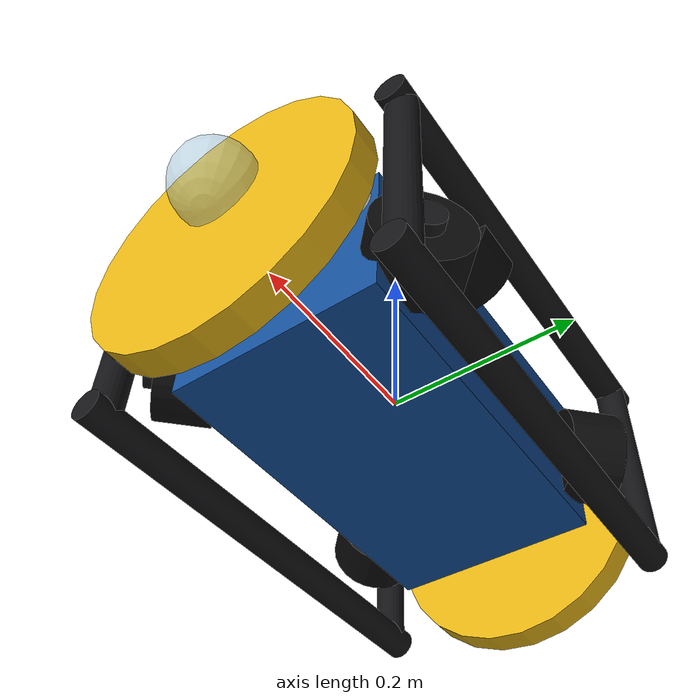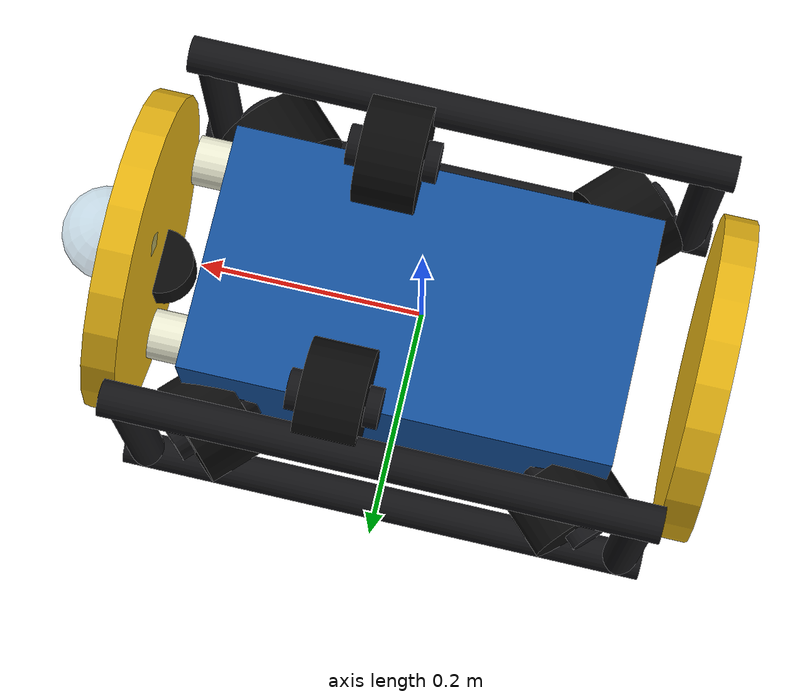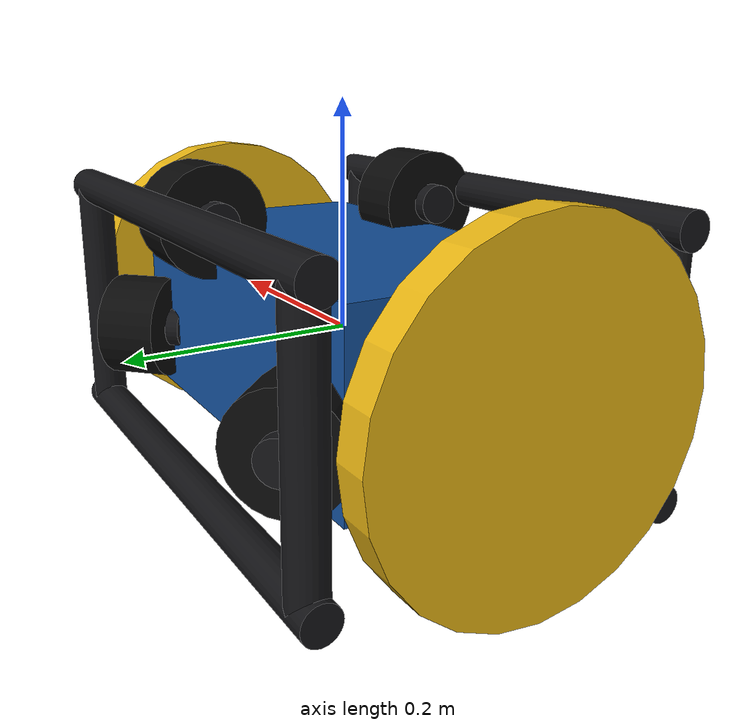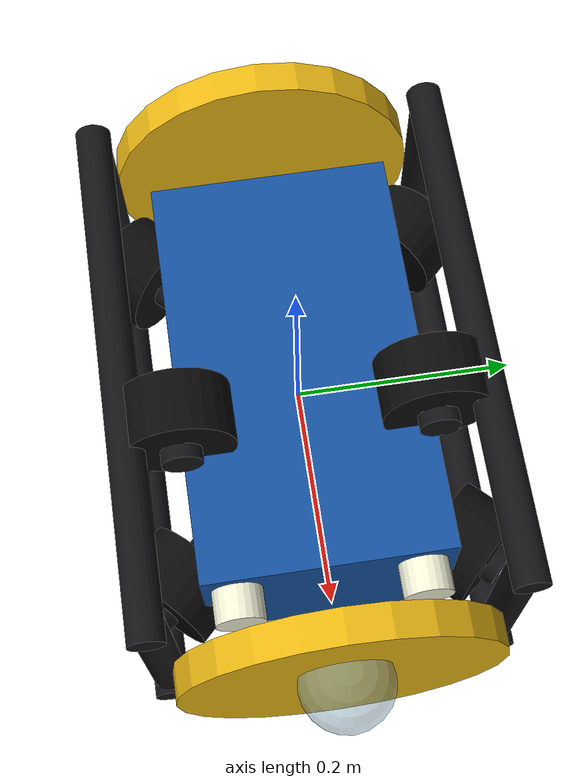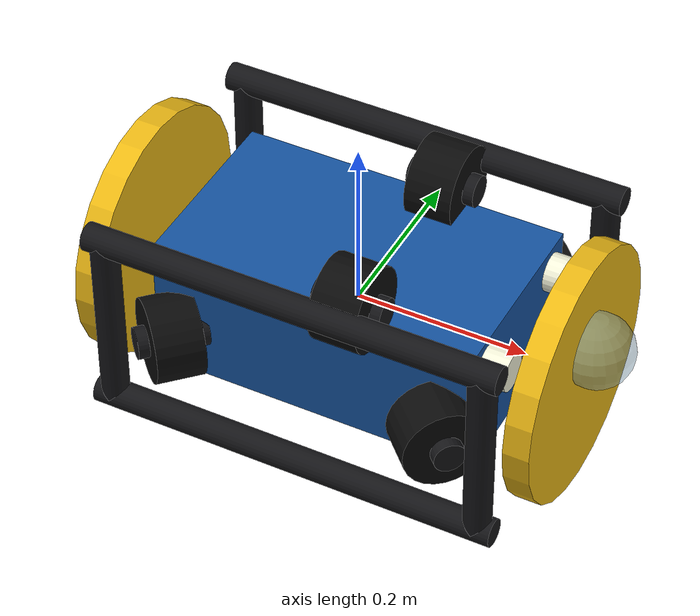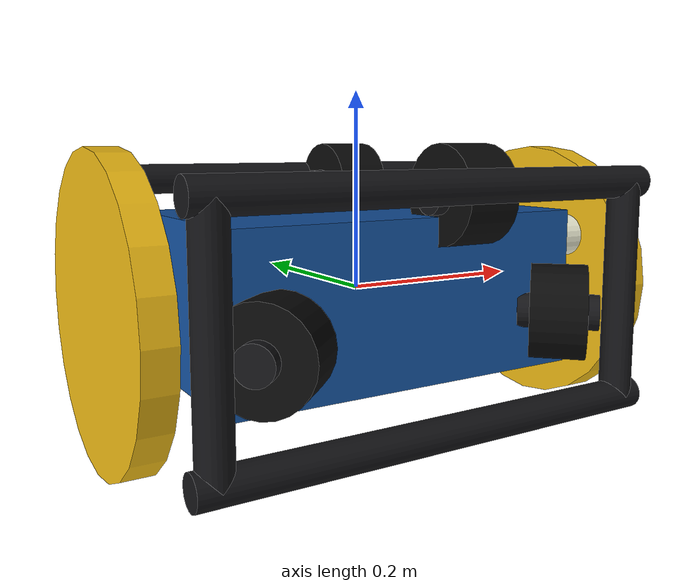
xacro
<?xml version="1.0"?>
<robot xmlns:xacro="http://www.ros.org/wiki/xacro" name="abdu_rov">
  <!--
    ABDÜ — muayene sınıfı ROV (BlueROV2 benzeri açık çerçeve).
    6 serbestlik derecesi: surge, sway, heave, roll, pitch, yaw.
  -->

  <xacro:property name="body_x" value="0.38"/>
  <xacro:property name="body_y" value="0.22"/>
  <xacro:property name="body_z" value="0.16"/>
  <xacro:property name="body_mass" value="13.0"/>

  <xacro:macro name="box_inertia" params="m x y z">
    <inertia
      ixx="${m*(y*y+z*z)/12.0}" ixy="0.0" ixz="0.0"
      iyy="${m*(x*x+z*z)/12.0}" iyz="0.0"
      izz="${m*(x*x+y*y)/12.0}"/>
  </xacro:macro>

  <xacro:macro name="cyl_inertia" params="m r h">
    <inertia
      ixx="${m*(3*r*r+h*h)/12.0}" ixy="0.0" ixz="0.0"
      iyy="${m*(3*r*r+h*h)/12.0}" iyz="0.0"
      izz="${0.5*m*r*r}"/>
  </xacro:macro>

  <material name="blue">
    <color rgba="0.08 0.32 0.62 1.0"/>
  </material>
  <material name="frame_black">
    <color rgba="0.08 0.08 0.09 1.0"/>
  </material>
  <material name="yellow">
    <color rgba="0.92 0.72 0.08 1.0"/>
  </material>
  <material name="black">
    <color rgba="0.04 0.04 0.04 1.0"/>
  </material>
  <material name="white">
    <color rgba="0.90 0.92 0.94 1.0"/>
  </material>
  <material name="dome">
    <color rgba="0.55 0.72 0.82 0.45"/>
  </material>
  <material name="led">
    <color rgba="0.95 0.95 0.85 1.0"/>
  </material>

  <!-- Referans gövde -->
  <link name="base_link">
    <inertial>
      <origin xyz="0 0 0"/>
      <mass value="${body_mass}"/>
      <xacro:box_inertia m="${body_mass}" x="${body_x}" y="${body_y}" z="${body_z}"/>
    </inertial>
    <visual>
      <geometry>
        <box size="${body_x} ${body_y} ${body_z}"/>
      </geometry>
      <material name="blue"/>
    </visual>
    <collision>
      <geometry>
        <box size="0.48 0.36 0.26"/>
      </geometry>
    </collision>
  </link>

  <!-- Açık alüminyum çerçeve rayları -->
  <xacro:macro name="rail" params="name x y z l rpy">
    <link name="${name}">
      <visual>
        <origin rpy="${rpy}"/>
        <geometry>
          <cylinder radius="0.016" length="${l}"/>
        </geometry>
        <material name="frame_black"/>
      </visual>
      <inertial>
        <mass value="0.12"/>
        <inertia ixx="0.001" ixy="0" ixz="0" iyy="0.001" iyz="0" izz="0.001"/>
      </inertial>
    </link>
    <joint name="${name}_joint" type="fixed">
      <parent link="base_link"/>
      <child link="${name}"/>
      <origin xyz="${x} ${y} ${z}"/>
    </joint>
  </xacro:macro>

  <xacro:rail name="rail_top_l" x="0" y="0.155" z="0.11" l="0.48" rpy="0 ${pi/2} 0"/>
  <xacro:rail name="rail_top_r" x="0" y="-0.155" z="0.11" l="0.48" rpy="0 ${pi/2} 0"/>
  <xacro:rail name="rail_bot_l" x="0" y="0.155" z="-0.11" l="0.48" rpy="0 ${pi/2} 0"/>
  <xacro:rail name="rail_bot_r" x="0" y="-0.155" z="-0.11" l="0.48" rpy="0 ${pi/2} 0"/>
  <xacro:rail name="rail_front_v_l" x="0.22" y="0.155" z="0" l="0.22" rpy="0 0 0"/>
  <xacro:rail name="rail_front_v_r" x="0.22" y="-0.155" z="0" l="0.22" rpy="0 0 0"/>
  <xacro:rail name="rail_rear_v_l" x="-0.22" y="0.155" z="0" l="0.22" rpy="0 0 0"/>
  <xacro:rail name="rail_rear_v_r" x="-0.22" y="-0.155" z="0" l="0.22" rpy="0 0 0"/>

  <!-- Sarı koruma halkaları -->
  <link name="bumper_front">
    <visual>
      <origin rpy="0 ${pi/2} 0"/>
      <geometry>
        <cylinder radius="0.145" length="0.03"/>
      </geometry>
      <material name="yellow"/>
    </visual>
    <inertial>
      <mass value="0.2"/>
      <inertia ixx="0.002" ixy="0" ixz="0" iyy="0.002" iyz="0" izz="0.002"/>
    </inertial>
  </link>
  <joint name="bumper_front_joint" type="fixed">
    <parent link="base_link"/>
    <child link="bumper_front"/>
    <origin xyz="0.255 0 0"/>
  </joint>
  <link name="bumper_rear">
    <visual>
      <origin rpy="0 ${pi/2} 0"/>
      <geometry>
        <cylinder radius="0.145" length="0.03"/>
      </geometry>
      <material name="yellow"/>
    </visual>
    <inertial>
      <mass value="0.2"/>
      <inertia ixx="0.002" ixy="0" ixz="0" iyy="0.002" iyz="0" izz="0.002"/>
    </inertial>
  </link>
  <joint name="bumper_rear_joint" type="fixed">
    <parent link="base_link"/>
    <child link="bumper_rear"/>
    <origin xyz="-0.255 0 0"/>
  </joint>

  <!-- 4 vektörlü yatay + 2 dikey itici (BlueROV2 düzeni) -->
  <xacro:macro name="thruster" params="name xyz rpy">
    <link name="${name}">
      <visual>
        <origin rpy="0 ${pi/2} 0"/>
        <geometry>
          <cylinder radius="0.048" length="0.055"/>
        </geometry>
        <material name="black"/>
      </visual>
      <visual name="hub">
        <origin rpy="0 ${pi/2} 0"/>
        <geometry>
          <cylinder radius="0.018" length="0.08"/>
        </geometry>
        <material name="frame_black"/>
      </visual>
      <inertial>
        <mass value="0.28"/>
        <inertia ixx="0.0004" ixy="0" ixz="0" iyy="0.0004" iyz="0" izz="0.0004"/>
      </inertial>
    </link>
    <joint name="${name}_joint" type="fixed">
      <parent link="base_link"/>
      <child link="${name}"/>
      <origin xyz="${xyz}" rpy="${rpy}"/>
    </joint>
  </xacro:macro>

  <xacro:thruster name="thruster_fl" xyz="0.16 0.13 -0.02" rpy="0 0 ${pi/4}"/>
  <xacro:thruster name="thruster_fr" xyz="0.16 -0.13 -0.02" rpy="0 0 ${-pi/4}"/>
  <xacro:thruster name="thruster_rl" xyz="-0.16 0.13 -0.02" rpy="0 0 ${-pi/4}"/>
  <xacro:thruster name="thruster_rr" xyz="-0.16 -0.13 -0.02" rpy="0 0 ${pi/4}"/>
  <xacro:thruster name="thruster_vu" xyz="0.05 0.11 0.10" rpy="${pi/2} 0 0"/>
  <xacro:thruster name="thruster_vd" xyz="0.05 -0.11 0.10" rpy="${pi/2} 0 0"/>

  <!-- Tek ön kamera: burun kubbesi, tamponun biraz önünde, hafif aşağı bakış -->
  <link name="front_camera_link">
    <visual>
      <geometry>
        <sphere radius="0.042"/>
      </geometry>
      <material name="dome"/>
    </visual>
    <inertial>
      <mass value="0.12"/>
      <inertia ixx="0.0002" ixy="0" ixz="0" iyy="0.0002" iyz="0" izz="0.0002"/>
    </inertial>
  </link>
  <joint name="front_camera_joint" type="fixed">
    <parent link="base_link"/>
    <child link="front_camera_link"/>
    <origin xyz="0.28 0 0.04" rpy="0 -0.07 0"/>
  </joint>
  <link name="front_camera_optical_frame"/>
  <joint name="front_camera_optical_joint" type="fixed">
    <parent link="front_camera_link"/>
    <child link="front_camera_optical_frame"/>
    <origin xyz="0 0 0" rpy="${-pi/2} 0 ${-pi/2}"/>
  </joint>

  <!-- LED ışıklar -->
  <link name="light_left_link">
    <visual>
      <geometry>
        <cylinder radius="0.022" length="0.04"/>
      </geometry>
      <material name="led"/>
    </visual>
    <inertial>
      <mass value="0.04"/>
      <inertia ixx="1e-5" ixy="0" ixz="0" iyy="1e-5" iyz="0" izz="1e-5"/>
    </inertial>
  </link>
  <joint name="light_left_joint" type="fixed">
    <parent link="base_link"/>
    <child link="light_left_link"/>
    <origin xyz="0.20 0.08 0.05" rpy="0 ${pi/2} 0"/>
  </joint>
  <link name="light_right_link">
    <visual>
      <geometry>
        <cylinder radius="0.022" length="0.04"/>
      </geometry>
      <material name="led"/>
    </visual>
    <inertial>
      <mass value="0.04"/>
      <inertia ixx="1e-5" ixy="0" ixz="0" iyy="1e-5" iyz="0" izz="1e-5"/>
    </inertial>
  </link>
  <joint name="light_right_joint" type="fixed">
    <parent link="base_link"/>
    <child link="light_right_link"/>
    <origin xyz="0.20 -0.08 0.05" rpy="0 ${pi/2} 0"/>
  </joint>

  <link name="imu_link">
    <inertial>
      <mass value="0.03"/>
      <inertia ixx="1e-5" ixy="0" ixz="0" iyy="1e-5" iyz="0" izz="1e-5"/>
    </inertial>
  </link>
  <joint name="imu_joint" type="fixed">
    <parent link="base_link"/>
    <child link="imu_link"/>
    <origin xyz="0 0 0.02"/>
  </joint>

  <!-- İleri sonar -->
  <link name="sonar_link">
    <visual>
      <geometry>
        <cylinder radius="0.03" length="0.04"/>
      </geometry>
      <material name="black"/>
    </visual>
    <inertial>
      <mass value="0.08"/>
      <inertia ixx="1e-4" ixy="0" ixz="0" iyy="1e-4" iyz="0" izz="1e-4"/>
    </inertial>
  </link>
  <joint name="sonar_joint" type="fixed">
    <parent link="base_link"/>
    <child link="sonar_link"/>
    <origin xyz="0.24 0 -0.04"/>
  </joint>

  <!-- Altimetre (aşağı bakış) -->
  <link name="altimeter_link">
    <inertial>
      <mass value="0.03"/>
      <inertia ixx="1e-5" ixy="0" ixz="0" iyy="1e-5" iyz="0" izz="1e-5"/>
    </inertial>
  </link>
  <joint name="altimeter_joint" type="fixed">
    <parent link="base_link"/>
    <child link="altimeter_link"/>
    <origin xyz="-0.05 0 -0.12" rpy="0 ${pi/2} 0"/>
  </joint>

  <!-- Gazebo görselleri -->
  <gazebo reference="base_link"><material>Gazebo/Blue</material></gazebo>
  <gazebo reference="bumper_front"><material>Gazebo/Yellow</material></gazebo>
  <gazebo reference="bumper_rear"><material>Gazebo/Yellow</material></gazebo>
  <gazebo reference="thruster_fl"><material>Gazebo/FlatBlack</material></gazebo>
  <gazebo reference="thruster_fr"><material>Gazebo/FlatBlack</material></gazebo>
  <gazebo reference="thruster_rl"><material>Gazebo/FlatBlack</material></gazebo>
  <gazebo reference="thruster_rr"><material>Gazebo/FlatBlack</material></gazebo>
  <gazebo reference="thruster_vu"><material>Gazebo/FlatBlack</material></gazebo>
  <gazebo reference="thruster_vd"><material>Gazebo/FlatBlack</material></gazebo>
  <gazebo reference="front_camera_link"><material>Gazebo/BlueTransparent</material></gazebo>
  <gazebo reference="light_left_link"><material>Gazebo/White</material></gazebo>
  <gazebo reference="light_right_link"><material>Gazebo/White</material></gazebo>
  <gazebo reference="sonar_link"><material>Gazebo/FlatBlack</material></gazebo>
  <gazebo reference="rail_top_l"><material>Gazebo/DarkGrey</material></gazebo>
  <gazebo reference="rail_top_r"><material>Gazebo/DarkGrey</material></gazebo>
  <gazebo reference="rail_bot_l"><material>Gazebo/DarkGrey</material></gazebo>
  <gazebo reference="rail_bot_r"><material>Gazebo/DarkGrey</material></gazebo>
  <gazebo reference="rail_front_v_l"><material>Gazebo/DarkGrey</material></gazebo>
  <gazebo reference="rail_front_v_r"><material>Gazebo/DarkGrey</material></gazebo>
  <gazebo reference="rail_rear_v_l"><material>Gazebo/DarkGrey</material></gazebo>
  <gazebo reference="rail_rear_v_r"><material>Gazebo/DarkGrey</material></gazebo>

  <gazebo reference="imu_link">
    <sensor name="imu_sensor" type="imu">
      <always_on>true</always_on>
      <update_rate>50</update_rate>
      <visualize>false</visualize>
      <imu>
        <angular_velocity>
          <x><noise type="gaussian"><mean>0</mean><stddev>0.0003</stddev></noise></x>
          <y><noise type="gaussian"><mean>0</mean><stddev>0.0003</stddev></noise></y>
          <z><noise type="gaussian"><mean>0</mean><stddev>0.0003</stddev></noise></z>
        </angular_velocity>
        <linear_acceleration>
          <x><noise type="gaussian"><mean>0</mean><stddev>0.02</stddev></noise></x>
          <y><noise type="gaussian"><mean>0</mean><stddev>0.02</stddev></noise></y>
          <z><noise type="gaussian"><mean>0</mean><stddev>0.02</stddev></noise></z>
        </linear_acceleration>
      </imu>
      <plugin name="abdu_imu" filename="libgazebo_ros_imu_sensor.so">
        <ros>
          <namespace>abdu</namespace>
          <remapping>~/out:=imu</remapping>
        </ros>
      </plugin>
    </sensor>
  </gazebo>

  <gazebo reference="front_camera_link">
    <sensor name="front_camera_sensor" type="camera">
      <always_on>true</always_on>
      <update_rate>15</update_rate>
      <visualize>false</visualize>
      <camera>
        <horizontal_fov>1.57</horizontal_fov>
        <image>
          <width>640</width>
          <height>360</height>
          <format>R8G8B8</format>
        </image>
        <clip>
          <near>0.12</near>
          <far>35</far>
        </clip>
      </camera>
      <plugin name="abdu_front_camera" filename="libgazebo_ros_camera.so">
        <ros>
          <namespace>abdu</namespace>
        </ros>
        <camera_name>front_camera</camera_name>
        <frame_name>front_camera_optical_frame</frame_name>
      </plugin>
    </sensor>
  </gazebo>

  <gazebo reference="sonar_link">
    <sensor name="sonar_sensor" type="ray">
      <always_on>true</always_on>
      <visualize>false</visualize>
      <update_rate>10</update_rate>
      <ray>
        <scan>
          <horizontal>
            <samples>80</samples>
            <resolution>1</resolution>
            <min_angle>-0.70</min_angle>
            <max_angle>0.70</max_angle>
          </horizontal>
          <vertical>
            <samples>1</samples>
            <resolution>1</resolution>
            <min_angle>0</min_angle>
            <max_angle>0</max_angle>
          </vertical>
        </scan>
        <range>
          <min>0.12</min>
          <max>18.0</max>
          <resolution>0.04</resolution>
        </range>
      </ray>
      <plugin name="abdu_sonar" filename="libgazebo_ros_ray_sensor.so">
        <ros>
          <namespace>abdu</namespace>
          <remapping>~/out:=sonar</remapping>
        </ros>
        <output_type>sensor_msgs/LaserScan</output_type>
        <frame_name>sonar_link</frame_name>
      </plugin>
    </sensor>
  </gazebo>

  <gazebo reference="altimeter_link">
    <sensor name="altimeter_sensor" type="ray">
      <always_on>true</always_on>
      <visualize>false</visualize>
      <update_rate>8</update_rate>
      <ray>
        <scan>
          <horizontal>
            <samples>1</samples>
            <resolution>1</resolution>
            <min_angle>0</min_angle>
            <max_angle>0</max_angle>
          </horizontal>
          <vertical>
            <samples>1</samples>
            <resolution>1</resolution>
            <min_angle>0</min_angle>
            <max_angle>0</max_angle>
          </vertical>
        </scan>
        <range>
          <min>0.08</min>
          <max>20.0</max>
          <resolution>0.02</resolution>
        </range>
      </ray>
      <plugin name="abdu_altimeter" filename="libgazebo_ros_ray_sensor.so">
        <ros>
          <namespace>abdu</namespace>
          <remapping>~/out:=altimeter</remapping>
        </ros>
        <output_type>sensor_msgs/LaserScan</output_type>
        <frame_name>altimeter_link</frame_name>
      </plugin>
    </sensor>
  </gazebo>

  <gazebo>
    <plugin name="abdu_rov" filename="libabdu_rov_plugin.so">
      <ros>
        <namespace>abdu</namespace>
      </ros>
      <link_name>base_link</link_name>
      <water_level>0.0</water_level>
      <fluid_density>1025.0</fluid_density>
      <displaced_volume>0.0162</displaced_volume>
      <max_surge_force>90.0</max_surge_force>
      <max_sway_force>70.0</max_sway_force>
      <max_heave_force>80.0</max_heave_force>
      <max_roll_torque>8.0</max_roll_torque>
      <max_pitch_torque>10.0</max_pitch_torque>
      <max_yaw_torque>12.0</max_yaw_torque>
      <max_speed>1.4</max_speed>
      <max_heave_speed>0.55</max_heave_speed>
      <max_yaw_rate>1.1</max_yaw_rate>
      <cmd_timeout>0.8</cmd_timeout>
      <publish_tf>true</publish_tf>
      <odometry_frame>odom</odometry_frame>
      <robot_base_frame>base_link</robot_base_frame>
    </plugin>
  </gazebo>
</robot>
